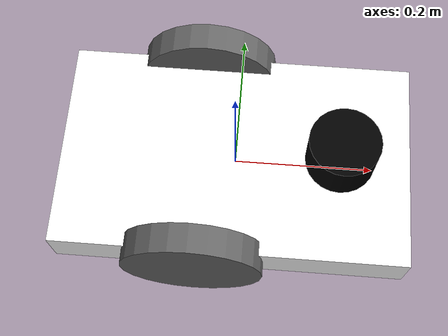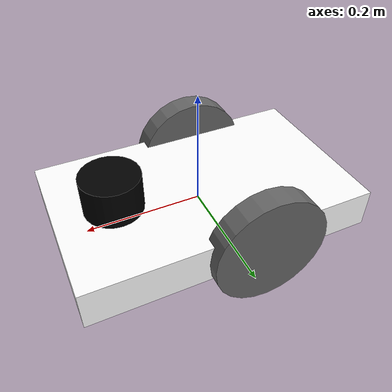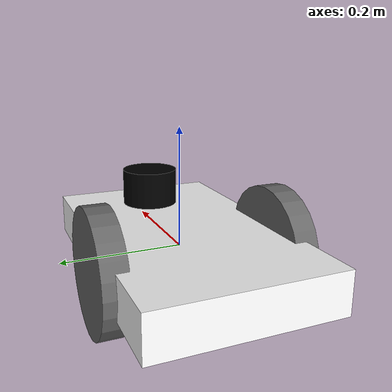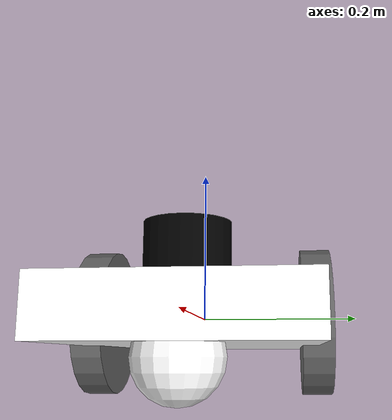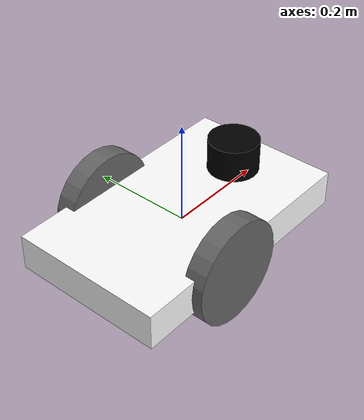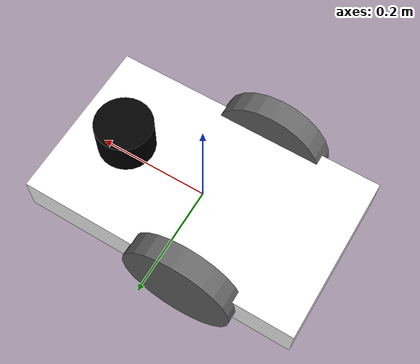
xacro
<?xml version="1.0" ?>

<robot name="diffdam" xmlns:xacro="https://www.ros.org/wiki/xacro" >

  <xacro:include filename="$(find diffdam_description)/urdf/materials.xacro" />
  <xacro:include filename="$(find diffdam_description)/urdf/diffdam_gazebo.xacro" />
  <xacro:include filename="$(find diffdam_description)/urdf/wheel_macro.xacro" />

  <!-- Defining link chassis -->
  <link name="link_chassis">
    <!-- pose and inertial -->
    <pose>0 0 0 0 0 0</pose>

    <!-- Inertial properties -->
    <inertial>
      <mass value="5"/>
      <origin rpy="0 0 0" xyz="0 0 0"/>
      <inertia ixx="0.0395416666667" ixy="0" ixz="0" iyy="0.106208333333" iyz="0" izz="0.106208333333"/>
    </inertial>
    <!-- Collision properties -->
    <collision name="collision_chassis">
      <geometry>
        <box size="0.5 0.3 0.07"/>
      </geometry>
    </collision>
    <!-- Visual properties -->
    <visual>
      <origin rpy="0 0 0" xyz="0 0 0"/>
      <geometry>
        <box size="0.5 0.3 0.07"/>
      </geometry>
      <material name="white"/>
    </visual>

    <!-- caster front -->
    <collision name="caster_front_collision">
      <origin rpy=" 0 0 0" xyz="0.2 0 -0.05"/>
      <geometry>
        <sphere radius="0.05"/>
      </geometry>
      <surface>
        <friction>
          <ode>
            <mu>0</mu>
            <mu2>0</mu2>
            <slip1>1.0</slip1>
            <slip2>1.0</slip2>
          </ode>
        </friction>
      </surface>
    </collision>
    <visual name="caster_front_visual">
      <origin rpy=" 0 0 0" xyz="0.2 0 -0.05"/>
      <geometry>
        <sphere radius="0.05"/>
      </geometry>
      <material name="white" />
    </visual>
    </link>

  <!--
    Replace the wheel links with the following lines for macros:
  -->
  <xacro:link_wheel name="link_right_wheel" mass="0.2" length="0.04" radius="0.1"/>
  <xacro:link_wheel name="link_left_wheel" mass="0.2" length="0.04" radius="0.1"/>

  <xacro:joint_wheel name="joint_right_wheel"  parent="link_chassis" child="link_right_wheel"  origin_xyz="-0.05 0.15 0"  />
  <xacro:joint_wheel name="joint_left_wheel"   parent="link_chassis" child="link_left_wheel"   origin_xyz="-0.05 -0.15 0"  />

  <!--
    Adding a laser scan sensor to the robot
  -->
  <link name="sensor_laser">
    <inertial>
      <origin xyz="0 0 0" rpy="0 0 0" />
      <mass value="1" />
      <!-- RANDOM INERTIA BELOW -->

      <xacro:cylinder_inertia mass="1" r="0.05" l="0.1" />

    </inertial>

    <visual>
      <origin xyz="0 0 0" rpy="0 0 0" />
      <geometry>
        <cylinder radius="0.05" length="0.1"/>
      </geometry>
      <material name="black" />
    </visual>

    <collision>
      <origin xyz="0 0 0" rpy="0 0 0"/>
      <geometry>
        <cylinder radius="0.05" length="0.1"/>
      </geometry>
    </collision>
  </link>

  <joint name="joint_sensor_laser" type="fixed">
    <origin xyz="0.15 0 0.05" rpy="0 0 0"/>
    <parent link="link_chassis"/>
    <child link="sensor_laser"/>
  </joint>

  <link name="imu_link">
    <collision>
      <origin xyz="0 0 0" rpy="0 0 0"/>
      <geometry>
        <box size="0 0 0.05"/>
      </geometry>
    </collision>

    <visual>
      <origin xyz="0 0 0" rpy="0 0 0"/>
      <geometry>
        <box size="0 0 0.05"/>
      </geometry>
    </visual>
    <xacro:inertial_box mass="0.01" x="0" y="0.05" z="0.05">
          <origin xyz="0.0 0 0.0" rpy="0 0 0"/>
    </xacro:inertial_box>
 </link>

  <joint name="imu_joint" type="fixed">
   <origin xyz="0.2 0.000 0.30" rpy="0 0 0"/>
    <parent link="link_chassis"/>
    <child link="imu_link"/>
  </joint>

  <gazebo reference="sensor_laser">
    <sensor type="ray" name="head_hokuyo_sensor">
      <pose>0 0 0 0 0 0</pose>
      <visualize>false</visualize>
      <update_rate>20</update_rate>
      <ray>
        <scan>
          <horizontal>
            <samples>1280</samples>
            <resolution>1</resolution>
            <min_angle>-1.570796</min_angle>
            <max_angle>1.570796</max_angle>
          </horizontal>
        </scan>
        <range>
          <min>0.26</min>
          <max>16.0</max>
          <resolution>0.03</resolution>
        </range>
        <noise>
          <type>gaussian</type>
          <mean>0.0</mean>
          <stddev>0.01</stddev>
        </noise>
      </ray>
      <plugin name="gazebo_ros_head_hokuyo_controller" filename="libgazebo_ros_laser.so">
        <topicName>/scan</topicName>
        <frameName>sensor_laser</frameName>
      </plugin>
    </sensor>
  </gazebo>

   <joint name="camera_joint" type="fixed">
    <origin xyz="0.000 0.000 0.2" rpy="0 -1.570796 0"/>
    <parent link="link_chassis"/>
    <child link="camera_link"/>
  </joint>
  <link name="camera_link"/>

   <gazebo reference="camera_link">
    <sensor type="camera" name="camera1">
      <update_rate>60.0</update_rate>
      <camera name="fiducial_cam">
        <image>
          <width>1080</width>
          <height>720</height>
          <format>R8G8B8</format>
        </image>
        <clip>
          <near>0.02</near>
          <far>3500</far>
        </clip>
        <noise>
          <type>gaussian</type>
          <!-- Noise is sampled independently per pixel on each frame.
               That pixel's noise value is added to each of its color
               channels, which at that point lie in the range [0,1]. -->
          <mean>0.0</mean>
          <stddev>0.007</stddev>
        </noise>
      </camera>

      <plugin name="camera_controller" filename="libgazebo_ros_camera.so">
        <alwaysOn>true</alwaysOn>
        <updateRate>0.0</updateRate>
        <cameraName>diffdam/camera1</cameraName>
        <imageTopicName>image_raw</imageTopicName>
        <cameraInfoTopicName>camera_info</cameraInfoTopicName>
        <frameName>camera_link</frameName>
        <hackBaseline>0.07</hackBaseline>
        <distortionK1>0.0</distortionK1>
        <distortionK2>0.0</distortionK2>
        <distortionK3>0.0</distortionK3>
        <distortionT1>0.0</distortionT1>
        <distortionT2>0.0</distortionT2>
      </plugin>

    </sensor>
  </gazebo>
</robot>

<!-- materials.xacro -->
<!--
  We are splitting the xacro file into smaller files
-->
<robot name="diffdam" xmlns:xacro="https://www.ros.org/wiki/xacro" >
  <!-- Define used colors -->
  <material name="black">
    <color rgba="0.0 0.0 0.0 1.0"/>
  </material>
  <material name="blue">
    <color rgba="0.203125 0.23828125 0.28515625 1.0"/>
  </material>
  <material name="green">
    <color rgba="0.0 0.8 0.0 1.0"/>
  </material>
  <material name="grey">
    <color rgba="0.4 0.4 0.4 1.0"/>
  </material>
  <material name="orange">
    <color rgba="1.0 0.423529411765 0.0392156862745 1.0"/>
  </material>
  <material name="brown">
    <color rgba="0.870588235294 0.811764705882 0.764705882353 1.0"/>
  </material>
  <material name="red">
    <color rgba="0.80078125 0.12890625 0.1328125 1.0"/>
  </material>
  <material name="white">
    <color rgba="1.0 1.0 1.0 1.0"/>
  </material>
</robot>

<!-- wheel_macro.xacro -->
<!--
  we will use macros, which are like functions, to reduce the remaining code in diffdam.xacro file.
-->
<robot xmlns:xacro="http://www.ros.org/wiki/xacro">
    <xacro:macro name="link_wheel" params="name mass length radius">
        <link name="${name}">
            <inertial>
              <mass value="${mass}"/>
              <origin rpy="0 0 0" xyz="0 0 0"/>
              <inertia ixx="0.000526666666667" ixy="0" ixz="0" iyy="0.000526666666667" iyz="0" izz="0.001"/>
            </inertial>
            <collision name="${name}_collision">
              <origin rpy="0 0 0" xyz="0 0 0"/>
              <geometry>
                <cylinder length="${length}" radius="${radius}"/>
              </geometry>
            </collision>
            <visual name="${name}_visual">
              <origin rpy="0 0 0" xyz="0 0 0"/>
              <geometry>
                <cylinder length="${length}" radius="${radius}"/>
              </geometry>
              <material name="grey" />
            </visual>
        </link>
    </xacro:macro>

    <!--
      The second macro accepts three parameters name, child and origin_xyz and it creates a joint link.
    -->
    <xacro:macro name="joint_wheel" params="name parent child origin_xyz">
      <joint name="${name}" type="continuous">
        <origin rpy="-${pi/2} 0 0" xyz="${origin_xyz}"/>
        <parent link="${parent}"/>
        <child link="${child}"/>
        <axis xyz="0 0 1"/>
        <limit effort="10000" velocity="1000"/>
        <joint_properties damping="1.0" friction="1.0"/>
      </joint>
    </xacro:macro>

    <!--
      new macro for controlling the moment of inertia of the sensor cilinder
    -->
    <xacro:macro name="cylinder_inertia" params="mass r l">
      <inertia ixx="${mass*(3*r*r+l*l)/12}" ixy = "0" ixz = "0" iyy="${mass*(3*r*r+l*l)/12}" iyz = "0" izz="${mass*(r*r)/2}" />
    </xacro:macro>

    <xacro:macro name="inertial_sphere" params="mass radius *origin">
        <inertial>
            <xacro:insert_block name="origin"/>
            <mass value="${mass}" />
            <inertia ixx="${(2/5) * mass * (radius*radius)}" ixy="0.0" ixz="0.0"
                    iyy="${(2/5) * mass * (radius*radius)}" iyz="0.0"
                    izz="${(2/5) * mass * (radius*radius)}" />
        </inertial>
    </xacro:macro>

    <xacro:macro name="inertial_box" params="mass x y z *origin">
        <inertial>
            <xacro:insert_block name="origin"/>
            <mass value="${mass}" />
            <inertia ixx="${(1/12) * mass * (y*y+z*z)}" ixy="0.0" ixz="0.0"
                    iyy="${(1/12) * mass * (x*x+z*z)}" iyz="0.0"
                    izz="${(1/12) * mass * (x*x+y*y)}" />
        </inertial>
    </xacro:macro>

</robot>
